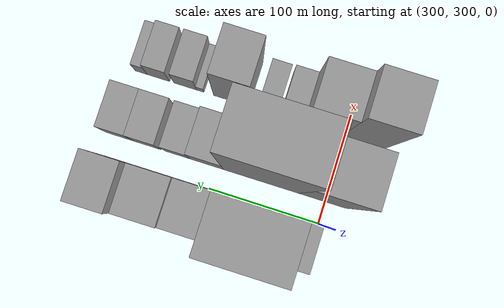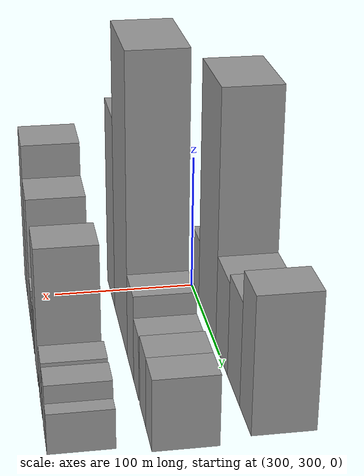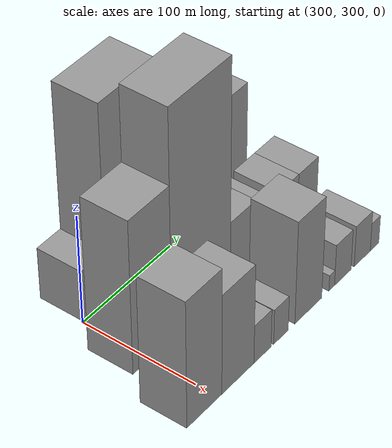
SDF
<sdf version="1.6">
 <world name="default">
  <model name="building_195">
   <static>1</static>
   <pose>280.0000 313.7377 0 0.000000 0.000000 0.000000</pose>
   <link name="link">
    <pose>0 0 24.00 0 0 0</pose>
    <collision name="collision"><geometry><box><size>40.0000 25.4897 48.0000</size></box></geometry></collision>
    <visual name="visual">
     <cast_shadows>0</cast_shadows>
     <geometry><box><size>40.0000 25.4897 48.0000</size></box></geometry>
     <material>
      <script>
       <uri>model://grey_wall/materials/scripts</uri>
       <uri>model://grey_wall/materials/textures</uri>
       <name>vrc/grey_wall</name>
      </script>
     </material>
    </visual>
   </link>
  </model>
  <model name="building_196">
   <static>1</static>
   <pose>280.0000 357.2490 0 0.000000 0.000000 0.000000</pose>
   <link name="link">
    <pose>0 0 90.00 0 0 0</pose>
    <collision name="collision"><geometry><box><size>40.0000 61.5329 180.0000</size></box></geometry></collision>
    <visual name="visual">
     <cast_shadows>0</cast_shadows>
     <geometry><box><size>40.0000 61.5329 180.0000</size></box></geometry>
     <material>
      <script>
       <uri>model://grey_wall/materials/scripts</uri>
       <uri>model://grey_wall/materials/textures</uri>
       <name>vrc/grey_wall</name>
      </script>
     </material>
    </visual>
   </link>
  </model>
  <model name="building_197">
   <static>1</static>
   <pose>280.0000 406.8932 0 0.000000 0.000000 0.000000</pose>
   <link name="link">
    <pose>0 0 33.00 0 0 0</pose>
    <collision name="collision"><geometry><box><size>40.0000 37.7554 66.0000</size></box></geometry></collision>
    <visual name="visual">
     <cast_shadows>0</cast_shadows>
     <geometry><box><size>40.0000 37.7554 66.0000</size></box></geometry>
     <material>
      <script>
       <uri>model://grey_wall/materials/scripts</uri>
       <uri>model://grey_wall/materials/textures</uri>
       <name>vrc/grey_wall</name>
      </script>
     </material>
    </visual>
   </link>
  </model>
  <model name="building_198">
   <static>1</static>
   <pose>280.0000 444.1044 0 0.000000 0.000000 0.000000</pose>
   <link name="link">
    <pose>0 0 36.00 0 0 0</pose>
    <collision name="collision"><geometry><box><size>40.0000 36.6672 72.0000</size></box></geometry></collision>
    <visual name="visual">
     <cast_shadows>0</cast_shadows>
     <geometry><box><size>40.0000 36.6672 72.0000</size></box></geometry>
     <material>
      <script>
       <uri>model://grey_wall/materials/scripts</uri>
       <uri>model://grey_wall/materials/textures</uri>
       <name>vrc/grey_wall</name>
      </script>
     </material>
    </visual>
   </link>
  </model>
  <model name="building_199">
   <static>1</static>
   <pose>280.0000 478.2560 0 0.000000 0.000000 0.000000</pose>
   <link name="link">
    <pose>0 0 46.50 0 0 0</pose>
    <collision name="collision"><geometry><box><size>40.0000 31.6361 93.0000</size></box></geometry></collision>
    <visual name="visual">
     <cast_shadows>0</cast_shadows>
     <geometry><box><size>40.0000 31.6361 93.0000</size></box></geometry>
     <material>
      <script>
       <uri>model://grey_wall/materials/scripts</uri>
       <uri>model://grey_wall/materials/textures</uri>
       <name>vrc/grey_wall</name>
      </script>
     </material>
    </visual>
   </link>
  </model>
  <model name="building_247">
   <static>1</static>
   <pose>340.0000 303.1910 0 0.000000 0.000000 0.000000</pose>
   <link name="link">
    <pose>0 0 70.50 0 0 0</pose>
    <collision name="collision"><geometry><box><size>40.0000 43.3744 141.0000</size></box></geometry></collision>
    <visual name="visual">
     <cast_shadows>0</cast_shadows>
     <geometry><box><size>40.0000 43.3744 141.0000</size></box></geometry>
     <material>
      <script>
       <uri>model://grey_wall/materials/scripts</uri>
       <uri>model://grey_wall/materials/textures</uri>
       <name>vrc/grey_wall</name>
      </script>
     </material>
    </visual>
   </link>
  </model>
  <model name="building_248">
   <static>1</static>
   <pose>340.0000 358.9578 0 0.000000 0.000000 0.000000</pose>
   <link name="link">
    <pose>0 0 103.50 0 0 0</pose>
    <collision name="collision"><geometry><box><size>40.0000 68.1591 207.0000</size></box></geometry></collision>
    <visual name="visual">
     <cast_shadows>0</cast_shadows>
     <geometry><box><size>40.0000 68.1591 207.0000</size></box></geometry>
     <material>
      <script>
       <uri>model://grey_wall/materials/scripts</uri>
       <uri>model://grey_wall/materials/textures</uri>
       <name>vrc/grey_wall</name>
      </script>
     </material>
    </visual>
   </link>
  </model>
  <model name="building_249">
   <static>1</static>
   <pose>340.0000 408.1441 0 0.000000 0.000000 0.000000</pose>
   <link name="link">
    <pose>0 0 30.00 0 0 0</pose>
    <collision name="collision"><geometry><box><size>40.0000 30.2135 60.0000</size></box></geometry></collision>
    <visual name="visual">
     <cast_shadows>0</cast_shadows>
     <geometry><box><size>40.0000 30.2135 60.0000</size></box></geometry>
     <material>
      <script>
       <uri>model://grey_wall/materials/scripts</uri>
       <uri>model://grey_wall/materials/textures</uri>
       <name>vrc/grey_wall</name>
      </script>
     </material>
    </visual>
   </link>
  </model>
  <model name="building_250">
   <static>1</static>
   <pose>340.0000 434.8686 0 0.000000 0.000000 0.000000</pose>
   <link name="link">
    <pose>0 0 22.50 0 0 0</pose>
    <collision name="collision"><geometry><box><size>40.0000 23.2354 45.0000</size></box></geometry></collision>
    <visual name="visual">
     <cast_shadows>0</cast_shadows>
     <geometry><box><size>40.0000 23.2354 45.0000</size></box></geometry>
     <material>
      <script>
       <uri>model://grey_wall/materials/scripts</uri>
       <uri>model://grey_wall/materials/textures</uri>
       <name>vrc/grey_wall</name>
      </script>
     </material>
    </visual>
   </link>
  </model>
  <model name="building_251">
   <static>1</static>
   <pose>340.0000 463.3263 0 0.000000 0.000000 0.000000</pose>
   <link name="link">
    <pose>0 0 24.00 0 0 0</pose>
    <collision name="collision"><geometry><box><size>40.0000 25.6801 48.0000</size></box></geometry></collision>
    <visual name="visual">
     <cast_shadows>0</cast_shadows>
     <geometry><box><size>40.0000 25.6801 48.0000</size></box></geometry>
     <material>
      <script>
       <uri>model://grey_wall/materials/scripts</uri>
       <uri>model://grey_wall/materials/textures</uri>
       <name>vrc/grey_wall</name>
      </script>
     </material>
    </visual>
   </link>
  </model>
  <model name="building_252">
   <static>1</static>
   <pose>340.0000 488.5494 0 0.000000 0.000000 0.000000</pose>
   <link name="link">
    <pose>0 0 24.00 0 0 0</pose>
    <collision name="collision"><geometry><box><size>40.0000 24.7661 48.0000</size></box></geometry></collision>
    <visual name="visual">
     <cast_shadows>0</cast_shadows>
     <geometry><box><size>40.0000 24.7661 48.0000</size></box></geometry>
     <material>
      <script>
       <uri>model://grey_wall/materials/scripts</uri>
       <uri>model://grey_wall/materials/textures</uri>
       <name>vrc/grey_wall</name>
      </script>
     </material>
    </visual>
   </link>
  </model>
  <model name="building_299">
   <static>1</static>
   <pose>400.0000 283.6743 0 0.000000 0.000000 0.000000</pose>
   <link name="link">
    <pose>0 0 58.50 0 0 0</pose>
    <collision name="collision"><geometry><box><size>40.0000 38.9589 117.0000</size></box></geometry></collision>
    <visual name="visual">
     <cast_shadows>0</cast_shadows>
     <geometry><box><size>40.0000 38.9589 117.0000</size></box></geometry>
     <material>
      <script>
       <uri>model://grey_wall/materials/scripts</uri>
       <uri>model://grey_wall/materials/textures</uri>
       <name>vrc/grey_wall</name>
      </script>
     </material>
    </visual>
   </link>
  </model>
  <model name="building_300">
   <static>1</static>
   <pose>400.0000 321.5773 0 0.000000 0.000000 0.000000</pose>
   <link name="link">
    <pose>0 0 46.50 0 0 0</pose>
    <collision name="collision"><geometry><box><size>40.0000 36.8471 93.0000</size></box></geometry></collision>
    <visual name="visual">
     <cast_shadows>0</cast_shadows>
     <geometry><box><size>40.0000 36.8471 93.0000</size></box></geometry>
     <material>
      <script>
       <uri>model://grey_wall/materials/scripts</uri>
       <uri>model://grey_wall/materials/textures</uri>
       <name>vrc/grey_wall</name>
      </script>
     </material>
    </visual>
   </link>
  </model>
  <model name="building_301">
   <static>1</static>
   <pose>400.0000 350.0999 0 0.000000 0.000000 0.000000</pose>
   <link name="link">
    <pose>0 0 18.00 0 0 0</pose>
    <collision name="collision"><geometry><box><size>40.0000 20.1980 36.0000</size></box></geometry></collision>
    <visual name="visual">
     <cast_shadows>0</cast_shadows>
     <geometry><box><size>40.0000 20.1980 36.0000</size></box></geometry>
     <material>
      <script>
       <uri>model://grey_wall/materials/scripts</uri>
       <uri>model://grey_wall/materials/textures</uri>
       <name>vrc/grey_wall</name>
      </script>
     </material>
    </visual>
   </link>
  </model>
  <model name="building_302">
   <static>1</static>
   <pose>400.0000 371.9151 0 0.000000 0.000000 0.000000</pose>
   <link name="link">
    <pose>0 0 16.50 0 0 0</pose>
    <collision name="collision"><geometry><box><size>40.0000 17.4325 33.0000</size></box></geometry></collision>
    <visual name="visual">
     <cast_shadows>0</cast_shadows>
     <geometry><box><size>40.0000 17.4325 33.0000</size></box></geometry>
     <material>
      <script>
       <uri>model://grey_wall/materials/scripts</uri>
       <uri>model://grey_wall/materials/textures</uri>
       <name>vrc/grey_wall</name>
      </script>
     </material>
    </visual>
   </link>
  </model>
  <model name="building_303">
   <static>1</static>
   <pose>400.0000 405.1179 0 0.000000 0.000000 0.000000</pose>
   <link name="link">
    <pose>0 0 48.00 0 0 0</pose>
    <collision name="collision"><geometry><box><size>40.0000 32.9729 96.0000</size></box></geometry></collision>
    <visual name="visual">
     <cast_shadows>0</cast_shadows>
     <geometry><box><size>40.0000 32.9729 96.0000</size></box></geometry>
     <material>
      <script>
       <uri>model://grey_wall/materials/scripts</uri>
       <uri>model://grey_wall/materials/textures</uri>
       <name>vrc/grey_wall</name>
      </script>
     </material>
    </visual>
   </link>
  </model>
  <model name="building_304">
   <static>1</static>
   <pose>400.0000 434.1037 0 0.000000 0.000000 0.000000</pose>
   <link name="link">
    <pose>0 0 7.50 0 0 0</pose>
    <collision name="collision"><geometry><box><size>40.0000 6.9988 15.0000</size></box></geometry></collision>
    <visual name="visual">
     <cast_shadows>0</cast_shadows>
     <geometry><box><size>40.0000 6.9988 15.0000</size></box></geometry>
     <material>
      <script>
       <uri>model://grey_wall/materials/scripts</uri>
       <uri>model://grey_wall/materials/textures</uri>
       <name>vrc/grey_wall</name>
      </script>
     </material>
    </visual>
   </link>
  </model>
  <model name="building_305">
   <static>1</static>
   <pose>400.0000 448.0857 0 0.000000 0.000000 0.000000</pose>
   <link name="link">
    <pose>0 0 19.50 0 0 0</pose>
    <collision name="collision"><geometry><box><size>40.0000 20.9652 39.0000</size></box></geometry></collision>
    <visual name="visual">
     <cast_shadows>0</cast_shadows>
     <geometry><box><size>40.0000 20.9652 39.0000</size></box></geometry>
     <material>
      <script>
       <uri>model://grey_wall/materials/scripts</uri>
       <uri>model://grey_wall/materials/textures</uri>
       <name>vrc/grey_wall</name>
      </script>
     </material>
    </visual>
   </link>
  </model>
  <model name="building_306">
   <static>1</static>
   <pose>400.0000 472.9755 0 0.000000 0.000000 0.000000</pose>
   <link name="link">
    <pose>0 0 19.50 0 0 0</pose>
    <collision name="collision"><geometry><box><size>40.0000 20.8145 39.0000</size></box></geometry></collision>
    <visual name="visual">
     <cast_shadows>0</cast_shadows>
     <geometry><box><size>40.0000 20.8145 39.0000</size></box></geometry>
     <material>
      <script>
       <uri>model://grey_wall/materials/scripts</uri>
       <uri>model://grey_wall/materials/textures</uri>
       <name>vrc/grey_wall</name>
      </script>
     </material>
    </visual>
   </link>
  </model>
  <model name="building_307">
   <static>1</static>
   <pose>400.0000 489.0116 0 0.000000 0.000000 0.000000</pose>
   <link name="link">
    <pose>0 0 13.50 0 0 0</pose>
    <collision name="collision"><geometry><box><size>40.0000 11.2578 27.0000</size></box></geometry></collision>
    <visual name="visual">
     <cast_shadows>0</cast_shadows>
     <geometry><box><size>40.0000 11.2578 27.0000</size></box></geometry>
     <material>
      <script>
       <uri>model://grey_wall/materials/scripts</uri>
       <uri>model://grey_wall/materials/textures</uri>
       <name>vrc/grey_wall</name>
      </script>
     </material>
    </visual>
   </link>
  </model>
 </world>
</sdf>
